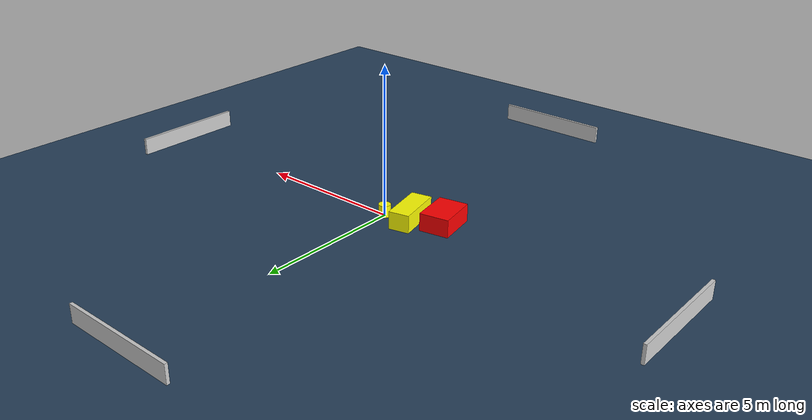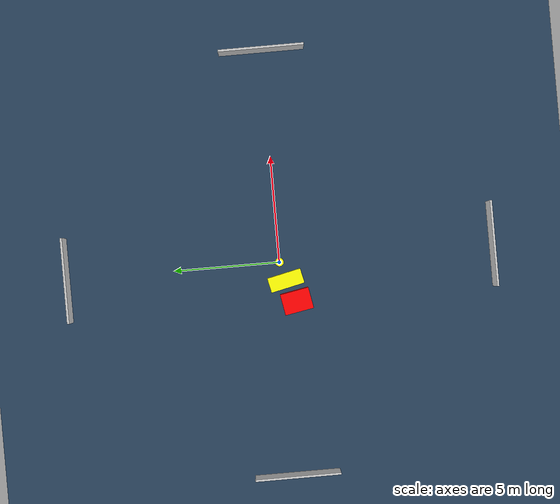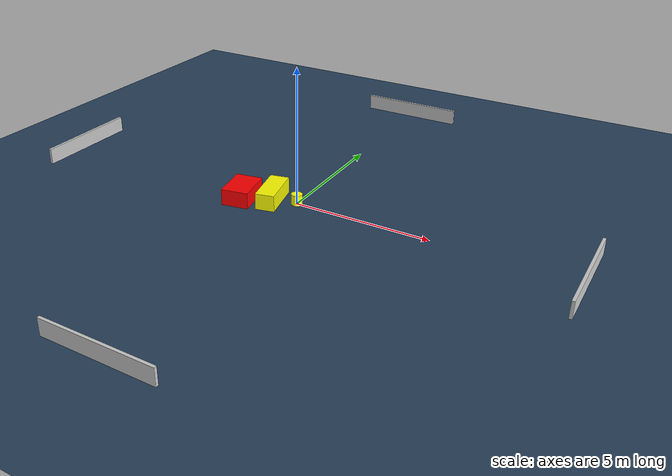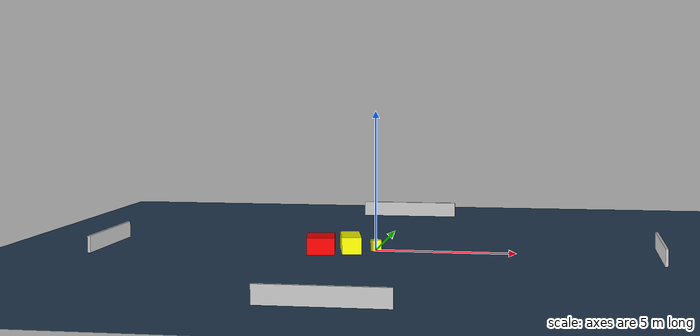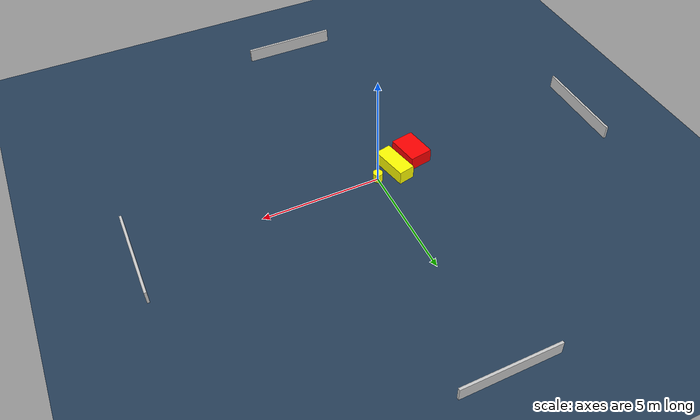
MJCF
<?xml version="1.0" ?>
<mujoco model="generated_environment">
  <option timestep="0.01" integrator="RK4" cone="elliptic"/>
  <default>
    <geom density="1"/>
  </default>
  <asset>
    <texture builtin="gradient" height="3072" name="skybox" rgb1="0.3 0.5 0.7" rgb2="0 0 0" type="skybox" width="512"/>
    <texture builtin="checker" height="300" name="groundplane" rgb1="0.2 0.3 0.4" rgb2="0.1 0.2 0.3" type="2d" width="300"/>
    <material name="groundplane" reflectance="0.2" texrepeat="5 5" texture="groundplane"/>
  </asset>
  <worldbody>
    <light dir="0 0 -1" directional="true" pos="0 0 1.5"/>
    <geom condim="3" friction="0.5 0.005 0.001" material="groundplane" name="floor" pos="0 0 0" size="0 0 0.05" type="plane"/>
    <body name="walls">
      <geom name="wall_1" condim="4" pos="-10.0 0.0 0.3" rgba="0.800000011920929 0.800000011920929 0.800000011920929 1.0" size="0.05 2.0 0.3" type="box"/>
      <geom name="wall_2" condim="4" pos="10.0 0.0 0.3" rgba="0.800000011920929 0.800000011920929 0.800000011920929 1.0" size="0.05 2.0 0.3" type="box"/>
      <geom name="wall_3" condim="4" pos="0.0 -10.0 0.3" rgba="0.800000011920929 0.800000011920929 0.800000011920929 1.0" size="2.0 0.05 0.3" type="box"/>
      <geom name="wall_4" condim="4" pos="0.0 10.0 0.3" rgba="0.800000011920929 0.800000011920929 0.800000011920929 1.0" size="2.0 0.05 0.3" type="box"/>
    </body>
    <body name="robot">
      <joint name="joint_x" type="slide" pos="0 0 0" axis="1 0 0"/>
      <joint name="joint_y" type="slide" pos="0 0 0" axis="0 1 0"/>
      <geom name="robot" type="cylinder" pos="0.0 0.0 0.2" size="0.2 0.2 0.0" mass="5.0" friction="1.0 0.005 0.0001" condim="4" rgba="1.0 1.0 0.0 1.0"/>
    </body>
    <body name="obstacle_1_movable">
      <geom name="obstacle_1_movable" condim="4" pos="-0.8792608654534516 -0.22133351692331826 0.3" euler="0 0 102.41337565986967" friction="0.0 0.005 0.001" rgba="1.0 1.0 0.0 1.0" size="0.7984354866404308 0.3461730131351216 0.3" type="box" mass="0.1"/>
      <joint type="free"/>
    </body>
    <body name="obstacle_2_static">
      <geom name="obstacle_2_static" condim="4" pos="-1.8814295823951406 -0.6473468948440135 0.3" euler="0 0 280.2466387826759" friction="0.0 0.005 0.001" rgba="1.0 0.0 0.0 1.0" size="0.6769749528019813 0.49405904942209883 0.3" type="box"/>
    </body>
  </worldbody>
  <actuator>
    <motor name="actuator_x" joint="joint_x" gear="1" ctrlrange="-1 1"/>
    <motor name="actuator_y" joint="joint_y" gear="1" ctrlrange="-1 1"/>
  </actuator>
</mujoco>
